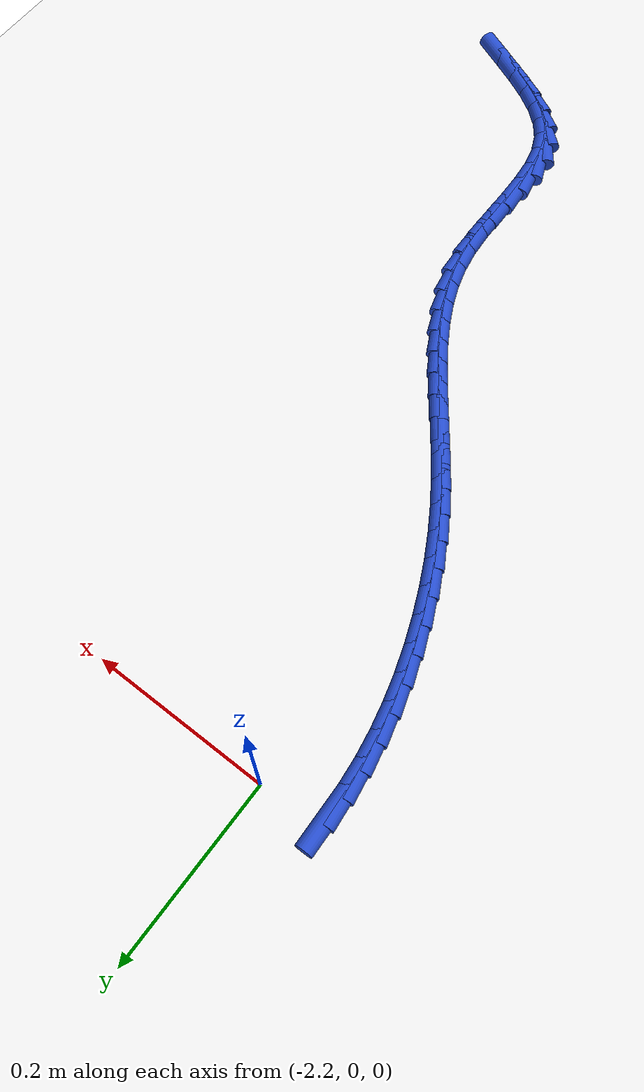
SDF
<sdf version="1.6">
 <world name="default">
  <model name="ground_plane">
   <static>1</static>
   <link name="link">
    <collision name="collision">
     <geometry><plane><normal>0 0 1</normal><size>100 100</size></plane></geometry>
     <surface><friction><ode><mu>100</mu><mu2>50</mu2></ode></friction></surface>
    </collision>
    <visual name="visual">
     <cast_shadows>0</cast_shadows>
     <geometry><plane><normal>0 0 1</normal><size>100 100</size></plane></geometry>
     <material>
      <script><uri>file://media/materials/scripts/gazebo.material</uri><name>Gazebo/WhiteGlow</name></script>
     </material>
    </visual>
   </link>
  </model>
  <model name="line">
   <link name="link_140">
    <pose>-2.268829363017977 -0.015736036493920594 0.01 0 1.57 -1.5454326518741015</pose>
    <collision name="collision">
     <geometry><cylinder><radius>0.01</radius><length>0.08</length></cylinder></geometry>
    </collision>
    <visual name="visual">
     <material>
      <script><name>Gazebo/Blue</name><uri>file://media/materials/scripts/gazebo.material</uri></script>
     </material>
     <geometry><cylinder><radius>0.01</radius><length>0.08</length></cylinder></geometry>
    </visual>
   </link>
   <link name="link_141">
    <pose>-2.268100584386064 -0.04446303875862617 0.01 0 1.57 -1.4788176062726939</pose>
    <collision name="collision">
     <geometry><cylinder><radius>0.01</radius><length>0.08</length></cylinder></geometry>
    </collision>
    <visual name="visual">
     <material>
      <script><name>Gazebo/Blue</name><uri>file://media/materials/scripts/gazebo.material</uri></script>
     </material>
     <geometry><cylinder><radius>0.01</radius><length>0.08</length></cylinder></geometry>
    </visual>
   </link>
   <link name="link_142">
    <pose>-2.2654134661275243 -0.07359517080326236 0.01 0 1.57 -1.4176501274740834</pose>
    <collision name="collision">
     <geometry><cylinder><radius>0.01</radius><length>0.08</length></cylinder></geometry>
    </collision>
    <visual name="visual">
     <material>
      <script><name>Gazebo/Blue</name><uri>file://media/materials/scripts/gazebo.material</uri></script>
     </material>
     <geometry><cylinder><radius>0.01</radius><length>0.08</length></cylinder></geometry>
    </visual>
   </link>
   <link name="link_143">
    <pose>-2.260879867640621 -0.10296644907443989 0.01 0 1.57 -1.3610445621385776</pose>
    <collision name="collision">
     <geometry><cylinder><radius>0.01</radius><length>0.08</length></cylinder></geometry>
    </collision>
    <visual name="visual">
     <material>
      <script><name>Gazebo/Blue</name><uri>file://media/materials/scripts/gazebo.material</uri></script>
     </material>
     <geometry><cylinder><radius>0.01</radius><length>0.08</length></cylinder></geometry>
    </visual>
   </link>
   <link name="link_144">
    <pose>-2.254611648323615 -0.13241089001876943 0.01 0 1.57 -1.3081630914018312</pose>
    <collision name="collision">
     <geometry><cylinder><radius>0.01</radius><length>0.08</length></cylinder></geometry>
    </collision>
    <visual name="visual">
     <material>
      <script><name>Gazebo/Blue</name><uri>file://media/materials/scripts/gazebo.material</uri></script>
     </material>
     <geometry><cylinder><radius>0.01</radius><length>0.08</length></cylinder></geometry>
    </visual>
   </link>
   <link name="link_145">
    <pose>-2.2467206675747713 -0.16176251008286183 0.01 0 1.57 -1.2582218104437022</pose>
    <collision name="collision">
     <geometry><cylinder><radius>0.01</radius><length>0.08</length></cylinder></geometry>
    </collision>
    <visual name="visual">
     <material>
      <script><name>Gazebo/Blue</name><uri>file://media/materials/scripts/gazebo.material</uri></script>
     </material>
     <geometry><cylinder><radius>0.01</radius><length>0.08</length></cylinder></geometry>
    </visual>
   </link>
   <link name="link_146">
    <pose>-2.237318784792351 -0.19085532571332856 0.01 0 1.57 -1.2104847788970003</pose>
    <collision name="collision">
     <geometry><cylinder><radius>0.01</radius><length>0.08</length></cylinder></geometry>
    </collision>
    <visual name="visual">
     <material>
      <script><name>Gazebo/Blue</name><uri>file://media/materials/scripts/gazebo.material</uri></script>
     </material>
     <geometry><cylinder><radius>0.01</radius><length>0.08</length></cylinder></geometry>
    </visual>
   </link>
   <link name="link_147">
    <pose>-2.2265178593746175 -0.21952335335677858 0.01 0 1.57 -1.1642508314952325</pose>
    <collision name="collision">
     <geometry><cylinder><radius>0.01</radius><length>0.08</length></cylinder></geometry>
    </collision>
    <visual name="visual">
     <material>
      <script><name>Gazebo/Blue</name><uri>file://media/materials/scripts/gazebo.material</uri></script>
     </material>
     <geometry><cylinder><radius>0.01</radius><length>0.08</length></cylinder></geometry>
    </visual>
   </link>
   <link name="link_148">
    <pose>-2.214429750719832 -0.24760060945982337 0.01 0 1.57 -1.1188357290213573</pose>
    <collision name="collision">
     <geometry><cylinder><radius>0.01</radius><length>0.08</length></cylinder></geometry>
    </collision>
    <visual name="visual">
     <material>
      <script><name>Gazebo/Blue</name><uri>file://media/materials/scripts/gazebo.material</uri></script>
     </material>
     <geometry><cylinder><radius>0.01</radius><length>0.08</length></cylinder></geometry>
    </visual>
   </link>
   <link name="link_149">
    <pose>-2.201166318226259 -0.27492111046907375 0.01 0 1.57 -1.073550666722084</pose>
    <collision name="collision">
     <geometry><cylinder><radius>0.01</radius><length>0.08</length></cylinder></geometry>
    </collision>
    <visual name="visual">
     <material>
      <script><name>Gazebo/Blue</name><uri>file://media/materials/scripts/gazebo.material</uri></script>
     </material>
     <geometry><cylinder><radius>0.01</radius><length>0.08</length></cylinder></geometry>
    </visual>
   </link>
   <link name="link_150">
    <pose>-2.1868394212921602 -0.30131887283114056 0.01 0 1.57 -1.027677064697366</pose>
    <collision name="collision">
     <geometry><cylinder><radius>0.01</radius><length>0.08</length></cylinder></geometry>
    </collision>
    <visual name="visual">
     <material>
      <script><name>Gazebo/Blue</name><uri>file://media/materials/scripts/gazebo.material</uri></script>
     </material>
     <geometry><cylinder><radius>0.01</radius><length>0.08</length></cylinder></geometry>
    </visual>
   </link>
   <link name="link_151">
    <pose>-2.17156091944415 -0.32662791324953366 0.01 0 1.57 -0.9828064554049052</pose>
    <collision name="collision">
     <geometry><cylinder><radius>0.01</radius><length>0.08</length></cylinder></geometry>
    </collision>
    <visual name="visual">
     <material>
      <script><name>Gazebo/Blue</name><uri>file://media/materials/scripts/gazebo.material</uri></script>
     </material>
     <geometry><cylinder><radius>0.01</radius><length>0.08</length></cylinder></geometry>
    </visual>
   </link>
   <link name="link_152">
    <pose>-2.1554780000942855 -0.350752957790397 0.01 0 1.57 -0.947856275527894</pose>
    <collision name="collision">
     <geometry><cylinder><radius>0.01</radius><length>0.08</length></cylinder></geometry>
    </collision>
    <visual name="visual">
     <material>
      <script><name>Gazebo/Blue</name><uri>file://media/materials/scripts/gazebo.material</uri></script>
     </material>
     <geometry><cylinder><radius>0.01</radius><length>0.08</length></cylinder></geometry>
    </visual>
   </link>
   <link name="link_153">
    <pose>-2.1388726977245307 -0.3738686312202144 0.01 0 1.57 -0.9257361861245504</pose>
    <collision name="collision">
     <geometry><cylinder><radius>0.01</radius><length>0.08</length></cylinder></geometry>
    </collision>
    <visual name="visual">
     <material>
      <script><name>Gazebo/Blue</name><uri>file://media/materials/scripts/gazebo.material</uri></script>
     </material>
     <geometry><cylinder><radius>0.01</radius><length>0.08</length></cylinder></geometry>
    </visual>
   </link>
   <link name="link_154">
    <pose>-2.122059215747898 -0.39621394496724227 0.01 0 1.57 -0.9171925334703145</pose>
    <collision name="collision">
     <geometry><cylinder><radius>0.01</radius><length>0.08</length></cylinder></geometry>
    </collision>
    <visual name="visual">
     <material>
      <script><name>Gazebo/Blue</name><uri>file://media/materials/scripts/gazebo.material</uri></script>
     </material>
     <geometry><cylinder><radius>0.01</radius><length>0.08</length></cylinder></geometry>
    </visual>
   </link>
   <link name="link_155">
    <pose>-2.1053517575773997 -0.4180279104597371 0.01 0 1.57 -0.9229673786690006</pose>
    <collision name="collision">
     <geometry><cylinder><radius>0.01</radius><length>0.08</length></cylinder></geometry>
    </collision>
    <visual name="visual">
     <material>
      <script><name>Gazebo/Blue</name><uri>file://media/materials/scripts/gazebo.material</uri></script>
     </material>
     <geometry><cylinder><radius>0.01</radius><length>0.08</length></cylinder></geometry>
    </visual>
   </link>
   <link name="link_156">
    <pose>-2.0890645266260495 -0.4395495391259538 0.01 0 1.57 -0.9438460480258789</pose>
    <collision name="collision">
     <geometry><cylinder><radius>0.01</radius><length>0.08</length></cylinder></geometry>
    </collision>
    <visual name="visual">
     <material>
      <script><name>Gazebo/Blue</name><uri>file://media/materials/scripts/gazebo.material</uri></script>
     </material>
     <geometry><cylinder><radius>0.01</radius><length>0.08</length></cylinder></geometry>
    </visual>
   </link>
   <link name="link_157">
    <pose>-2.073511726306859 -0.46101784239414884 0.01 0 1.57 -0.9806172919568177</pose>
    <collision name="collision">
     <geometry><cylinder><radius>0.01</radius><length>0.08</length></cylinder></geometry>
    </collision>
    <visual name="visual">
     <material>
      <script><name>Gazebo/Blue</name><uri>file://media/materials/scripts/gazebo.material</uri></script>
     </material>
     <geometry><cylinder><radius>0.01</radius><length>0.08</length></cylinder></geometry>
    </visual>
   </link>
   <link name="link_158">
    <pose>-2.059007560032842 -0.48267183169257855 0.01 0 1.57 -1.0339105543586757</pose>
    <collision name="collision">
     <geometry><cylinder><radius>0.01</radius><length>0.08</length></cylinder></geometry>
    </collision>
    <visual name="visual">
     <material>
      <script><name>Gazebo/Blue</name><uri>file://media/materials/scripts/gazebo.material</uri></script>
     </material>
     <geometry><cylinder><radius>0.01</radius><length>0.08</length></cylinder></geometry>
    </visual>
   </link>
   <link name="link_159">
    <pose>-2.0458662312170093 -0.5047505184494987 0.01 0 1.57 -1.103879488777162</pose>
    <collision name="collision">
     <geometry><cylinder><radius>0.01</radius><length>0.08</length></cylinder></geometry>
    </collision>
    <visual name="visual">
     <material>
      <script><name>Gazebo/Blue</name><uri>file://media/materials/scripts/gazebo.material</uri></script>
     </material>
     <geometry><cylinder><radius>0.01</radius><length>0.08</length></cylinder></geometry>
    </visual>
   </link>
   <link name="link_160">
    <pose>-2.034401943272375 -0.5274929140931653 0.01 0 1.57 -1.189743288853156</pose>
    <collision name="collision">
     <geometry><cylinder><radius>0.01</radius><length>0.08</length></cylinder></geometry>
    </collision>
    <visual name="visual">
     <material>
      <script><name>Gazebo/Blue</name><uri>file://media/materials/scripts/gazebo.material</uri></script>
     </material>
     <geometry><cylinder><radius>0.01</radius><length>0.08</length></cylinder></geometry>
    </visual>
   </link>
   <link name="link_161">
    <pose>-2.0249288996119508 -0.5511380300518348 0.01 0 1.57 -1.289305311701051</pose>
    <collision name="collision">
     <geometry><cylinder><radius>0.01</radius><length>0.08</length></cylinder></geometry>
    </collision>
    <visual name="visual">
     <material>
      <script><name>Gazebo/Blue</name><uri>file://media/materials/scripts/gazebo.material</uri></script>
     </material>
     <geometry><cylinder><radius>0.01</radius><length>0.08</length></cylinder></geometry>
    </visual>
   </link>
   <link name="link_162">
    <pose>-2.01776130364875 -0.5759248777537629 0.01 0 1.57 -1.39868415354009</pose>
    <collision name="collision">
     <geometry><cylinder><radius>0.01</radius><length>0.08</length></cylinder></geometry>
    </collision>
    <visual name="visual">
     <material>
      <script><name>Gazebo/Blue</name><uri>file://media/materials/scripts/gazebo.material</uri></script>
     </material>
     <geometry><cylinder><radius>0.01</radius><length>0.08</length></cylinder></geometry>
    </visual>
   </link>
   <link name="link_163">
    <pose>-2.0132126234625596 -0.6020919789689919 0.01 0 1.57 -1.4992515933443535</pose>
    <collision name="collision">
     <geometry><cylinder><radius>0.01</radius><length>0.08</length></cylinder></geometry>
    </collision>
    <visual name="visual">
     <material>
      <script><name>Gazebo/Blue</name><uri>file://media/materials/scripts/gazebo.material</uri></script>
     </material>
     <geometry><cylinder><radius>0.01</radius><length>0.08</length></cylinder></geometry>
    </visual>
   </link>
   <link name="link_164">
    <pose>-2.011238374148614 -0.6296394946630884 0.01 0 1.57 -1.557467130769389</pose>
    <collision name="collision">
     <geometry><cylinder><radius>0.01</radius><length>0.08</length></cylinder></geometry>
    </collision>
    <visual name="visual">
     <material>
      <script><name>Gazebo/Blue</name><uri>file://media/materials/scripts/gazebo.material</uri></script>
     </material>
     <geometry><cylinder><radius>0.01</radius><length>0.08</length></cylinder></geometry>
    </visual>
   </link>
   <link name="link_165">
    <pose>-2.010861045055575 -0.6579462841861884 0.01 0 1.57 1.5675513062023632</pose>
    <collision name="collision">
     <geometry><cylinder><radius>0.01</radius><length>0.08</length></cylinder></geometry>
    </collision>
    <visual name="visual">
     <material>
      <script><name>Gazebo/Blue</name><uri>file://media/materials/scripts/gazebo.material</uri></script>
     </material>
     <geometry><cylinder><radius>0.01</radius><length>0.08</length></cylinder></geometry>
    </visual>
   </link>
   <link name="link_166">
    <pose>-2.0109530253932046 -0.6862912552428122 0.01 0 1.57 -1.5503263432249825</pose>
    <collision name="collision">
     <geometry><cylinder><radius>0.01</radius><length>0.08</length></cylinder></geometry>
    </collision>
    <visual name="visual">
     <material>
      <script><name>Gazebo/Blue</name><uri>file://media/materials/scripts/gazebo.material</uri></script>
     </material>
     <geometry><cylinder><radius>0.01</radius><length>0.08</length></cylinder></geometry>
    </visual>
   </link>
   <link name="link_167">
    <pose>-2.0103867043712653 -0.7139533155374793 0.01 0 1.57 -1.48145341816498</pose>
    <collision name="collision">
     <geometry><cylinder><radius>0.01</radius><length>0.08</length></cylinder></geometry>
    </collision>
    <visual name="visual">
     <material>
      <script><name>Gazebo/Blue</name><uri>file://media/materials/scripts/gazebo.material</uri></script>
     </material>
     <geometry><cylinder><radius>0.01</radius><length>0.08</length></cylinder></geometry>
    </visual>
   </link>
   <link name="link_168">
    <pose>-2.008034471199519 -0.7402113727747086 0.01 0 1.57 -1.355965792623445</pose>
    <collision name="collision">
     <geometry><cylinder><radius>0.01</radius><length>0.08</length></cylinder></geometry>
    </collision>
    <visual name="visual">
     <material>
      <script><name>Gazebo/Blue</name><uri>file://media/materials/scripts/gazebo.material</uri></script>
     </material>
     <geometry><cylinder><radius>0.01</radius><length>0.08</length></cylinder></geometry>
    </visual>
   </link>
   <link name="link_169">
    <pose>-2.002768715087727 -0.7643443346590201 0.01 0 1.57 -1.1586816472412165</pose>
    <collision name="collision">
     <geometry><cylinder><radius>0.01</radius><length>0.08</length></cylinder></geometry>
    </collision>
    <visual name="visual">
     <material>
      <script><name>Gazebo/Blue</name><uri>file://media/materials/scripts/gazebo.material</uri></script>
     </material>
     <geometry><cylinder><radius>0.01</radius><length>0.08</length></cylinder></geometry>
    </visual>
   </link>
   <link name="link_170">
    <pose>-1.9934629107423225 -0.7856318878675672 0.01 0 1.57 -0.912101747329</pose>
    <collision name="collision">
     <geometry><cylinder><radius>0.01</radius><length>0.08</length></cylinder></geometry>
    </collision>
    <visual name="visual">
     <material>
      <script><name>Gazebo/Blue</name><uri>file://media/materials/scripts/gazebo.material</uri></script>
     </material>
     <geometry><cylinder><radius>0.01</radius><length>0.08</length></cylinder></geometry>
    </visual>
   </link>
   <link name="link_171">
    <pose>-1.9794761867907247 -0.8037022333795796 0.01 0 1.57 -0.7053561695320155</pose>
    <collision name="collision">
     <geometry><cylinder><radius>0.01</radius><length>0.08</length></cylinder></geometry>
    </collision>
    <visual name="visual">
     <material>
      <script><name>Gazebo/Blue</name><uri>file://media/materials/scripts/gazebo.material</uri></script>
     </material>
     <geometry><cylinder><radius>0.01</radius><length>0.08</length></cylinder></geometry>
    </visual>
   </link>
   <link name="link_172">
    <pose>-1.9614165321955748 -0.819079777618762 0.01 0 1.57 -0.5593436915361983</pose>
    <collision name="collision">
     <geometry><cylinder><radius>0.01</radius><length>0.08</length></cylinder></geometry>
    </collision>
    <visual name="visual">
     <material>
      <script><name>Gazebo/Blue</name><uri>file://media/materials/scripts/gazebo.material</uri></script>
     </material>
     <geometry><cylinder><radius>0.01</radius><length>0.08</length></cylinder></geometry>
    </visual>
   </link>
   <link name="link_173">
    <pose>-1.9400899145297006 -0.8324310001480936 0.01 0 1.57 -0.46692372146979944</pose>
    <collision name="collision">
     <geometry><cylinder><radius>0.01</radius><length>0.08</length></cylinder></geometry>
    </collision>
    <visual name="visual">
     <material>
      <script><name>Gazebo/Blue</name><uri>file://media/materials/scripts/gazebo.material</uri></script>
     </material>
     <geometry><cylinder><radius>0.01</radius><length>0.08</length></cylinder></geometry>
    </visual>
   </link>
   <link name="link_174">
    <pose>-1.9163023013659315 -0.8444223805305512 0.01 0 1.57 -0.41790189356557744</pose>
    <collision name="collision">
     <geometry><cylinder><radius>0.01</radius><length>0.08</length></cylinder></geometry>
    </collision>
    <visual name="visual">
     <material>
      <script><name>Gazebo/Blue</name><uri>file://media/materials/scripts/gazebo.material</uri></script>
     </material>
     <geometry><cylinder><radius>0.01</radius><length>0.08</length></cylinder></geometry>
    </visual>
   </link>
   <link name="link_175">
    <pose>-1.890859660277096 -0.8557203983291144 0.01 0 1.57 -0.40499662247087725</pose>
    <collision name="collision">
     <geometry><cylinder><radius>0.01</radius><length>0.08</length></cylinder></geometry>
    </collision>
    <visual name="visual">
     <material>
      <script><name>Gazebo/Blue</name><uri>file://media/materials/scripts/gazebo.material</uri></script>
     </material>
     <geometry><cylinder><radius>0.01</radius><length>0.08</length></cylinder></geometry>
    </visual>
   </link>
  </model>
 </world>
</sdf>
